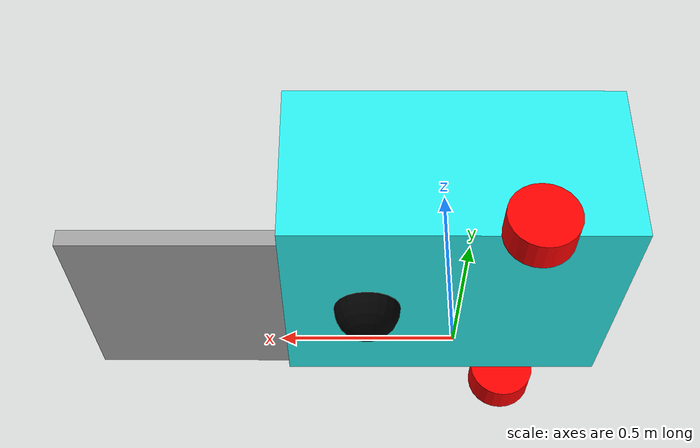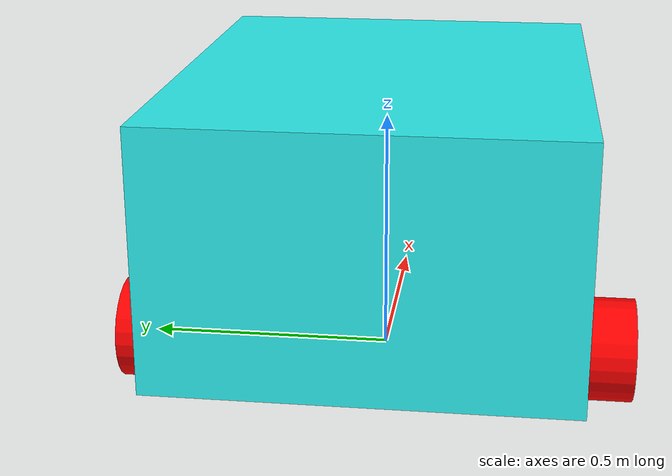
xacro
<?xml version="1.0"?>
<robot xmlns:xacro="http://www.ros.org/wiki/xacro">
    <xacro:include filename="inertial_macros.xacro" />

    <xacro:property name="chassis_m" value="20" />
    <xacro:property name="wheel_m" value="4" />
    <xacro:property name="caster_m" value="4" />
    <xacro:property name="fork_m" value="5" />
    <xacro:property name="chassis_x" value="1" />
    <xacro:property name="chassis_y" value="0.8" />
    <xacro:property name="chassis_z" value="0.5" />
    <xacro:property name="chassis_h" value="0.1" />
    <xacro:property name="wheel_l" value="0.1" />
    <xacro:property name="wheel_r" value="0.1" />
    <xacro:property name="caster_r" value="0.1" />
    <xacro:property name="fork_x" value="0.6" />
    <xacro:property name="fork_y" value="0.7" />
    <xacro:property name="fork_z" value="0.05" />
    <xacro:property name="fork_h" value="0.1" />

    <!-- BASE LINK -->

    <link name="base_link">

    </link>

    <!-- CHASSIS LINK -->

    <joint name="chassis_joint" type="fixed">
        <parent link="base_link"/>
        <child link="chassis"/>
        <origin xyz="0.0 0.0 ${chassis_z/2+wheel_r}" rpy="0.0 0.0 0.0"/>
    </joint>

        <!-- LINK -->
    <link name="chassis">
        <xacro:inertial_box mass="${chassis_m}" x="${chassis_x}" y="${chassis_y}" z="${chassis_z}">
            <origin xyz="0 0.0 0" rpy="0 0 0"/>
        </xacro:inertial_box>
        <visual>
            <origin xyz="0.0 0.0 0" rpy="0 0 0"/>
            <geometry>
                <box size="${chassis_x} ${chassis_y} ${chassis_z}"/>
            </geometry>
            <material name="green">
                <color rgba="0.175 0.93 0.93 1"/>
            </material>
        </visual>
        <collision>
            <origin xyz="0.0 0.0 0" rpy="0 0 0"/>
            <geometry>
                <box size="${chassis_x} ${chassis_y} ${chassis_z}"/>
            </geometry>
        </collision>
    </link>

    <!-- LEFT WHEEL LINK -->

    <joint name="left_wheel_joint" type="fixed">
        <parent link="chassis"/>
        <child link="left_wheel"/>
        <origin xyz="${-chassis_x/5} ${chassis_y/2+wheel_l/2} ${wheel_r-chassis_h-chassis_z/2}" rpy="-1.5707 0.0 0.0"/>
    </joint>

        <!-- LINK -->
    <link name="left_wheel">
        <xacro:inertial_cylinder mass="${wheel_m}" radius="${wheel_r}" length="${wheel_l}">
            <origin xyz="0.0 0.0 0" rpy="0 0 0"/>
        </xacro:inertial_cylinder>
        <visual>
            <origin xyz="0.0 0.0 0.0" rpy="0 0 0"/>
            <geometry>
                <cylinder radius="${wheel_r}" length="${wheel_l}"/>
            </geometry>
            <material name="red">
                <color rgba="1 0 0 1"/>
            </material>
        </visual>
        <collision>
            <origin xyz="0.0 0.0 0.0" rpy="0 0 0"/>
            <geometry>
                <cylinder radius="${wheel_r}" length="${wheel_l}"/>
            </geometry>
        </collision>
    </link>

    <!-- RIGHT WHEEL LINK -->

    <joint name="right_wheel_joint" type="fixed">
        <parent link="chassis"/>
        <child link="right_wheel"/>
        <origin xyz="${-chassis_x/5} ${-chassis_y/2-wheel_l/2} ${wheel_r-chassis_h-chassis_z/2}" rpy="-1.5707 0.0 0.0"/>
    </joint>

        <!-- LINK -->
    <link name="right_wheel">
        <xacro:inertial_cylinder mass="15" radius="${wheel_r}" length="${wheel_l}">
            <origin xyz="0.0 0 0" rpy="0 0 0"/>
        </xacro:inertial_cylinder>
        <visual>
            <origin xyz="0.0 0 0" rpy="0 0 0"/>
            <geometry>
                <cylinder radius="${wheel_r}" length="${wheel_l}"/>
            </geometry>
            <material name="red">
                <color rgba="1 0 0 1"/>
            </material>
        </visual>
        <collision>
            <origin xyz="0.0 0 0" rpy="0 0 0"/>
            <geometry>
                <cylinder radius="${wheel_r}" length="${wheel_l}"/>
            </geometry>
        </collision>
    </link>

    <!-- CASTER LINK -->

    <joint name="caster_joint" type="fixed">
        <parent link="chassis"/>
        <child link="caster"/>
        <origin xyz="${chassis_x/4} 0.0 ${caster_r-chassis_h-chassis_z/2}" rpy="0 0 0"/>
    </joint>

        <!-- LINK -->
    <link name="caster">
        <xacro:inertial_sphere mass="15" radius="0.1">
            <origin xyz="0.0 0.0 0" rpy="0 0 0"/>
        </xacro:inertial_sphere>
        <visual>
            <origin xyz="0 0.0 0" rpy="0 0 0"/>
            <geometry>
                <sphere radius="${caster_r}"/>
            </geometry>
            <material name="black">
                <color rgba="0 0 0 1"/>
            </material>
        </visual>
        <collision>
            <origin xyz="0 0.0 0" rpy="0 0 0"/>
            <geometry>
                <sphere radius="${caster_r}"/>
            </geometry>
        </collision>
    </link>

    <!-- FORK LINK -->

    <joint name="fork_joint" type="fixed">
        <parent link="chassis"/>
        <child link="fork"/>
        <origin xyz="${chassis_x/2+fork_x/2} 0.0 ${fork_z/2-chassis_z/2}" rpy="0.0 0.0 0.0"/>
    </joint>

        <!-- LINK -->
    <link name="fork">
        <xacro:inertial_box mass="${fork_m}" x="${fork_x}" y="${fork_y}" z="${fork_z}">
            <origin xyz="0.0 0.0 0.0" rpy="0 0 0"/>
        </xacro:inertial_box>
        <visual>
            <origin xyz="0.0 0 0" rpy="0 0 0"/>
            <geometry>
                <box size="${fork_x} ${fork_y} ${fork_z}"/>
            </geometry>
            <material name="grey">
                <color rgba="0.63 0.63 0.63 1"/>
            </material>
        </visual>
        <collision>
            <origin xyz="0.0 0 0" rpy="0 0 0"/>
            <geometry>
                <box size="${fork_x} ${fork_y} ${fork_z}"/>
            </geometry>
        </collision>
    </link>

    <gazebo reference="chassis">
        <material>Gazebo/SkyBlue</material>
    </gazebo>
    <gazebo reference="left_wheel">
        <material>Gazebo/Red</material>
    </gazebo>
    <gazebo reference="right_wheel">
        <material>Gazebo/Red</material>
    </gazebo>
    <gazebo reference="caster">
        <material>Gazebo/Black</material>
    </gazebo>
    <gazebo reference="fork">
        <material>Gazebo/Grey</material>
    </gazebo>

</robot>
